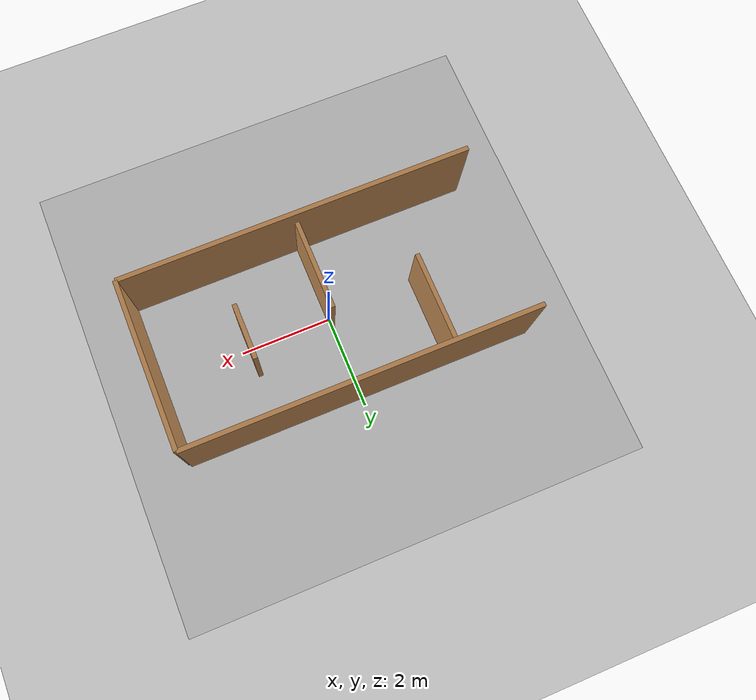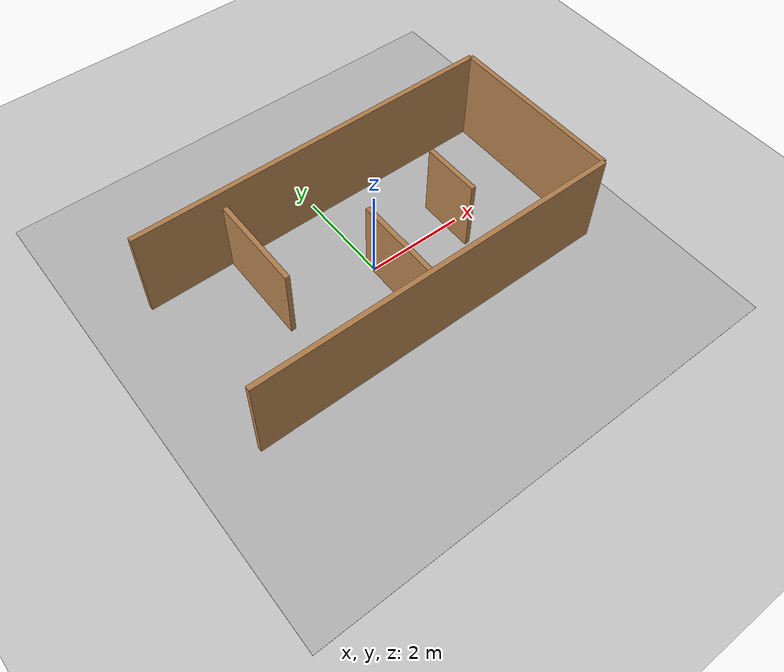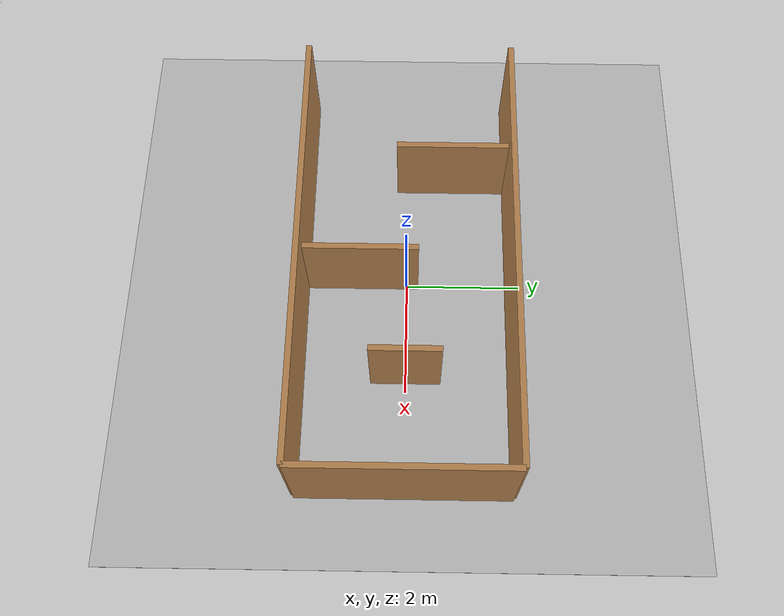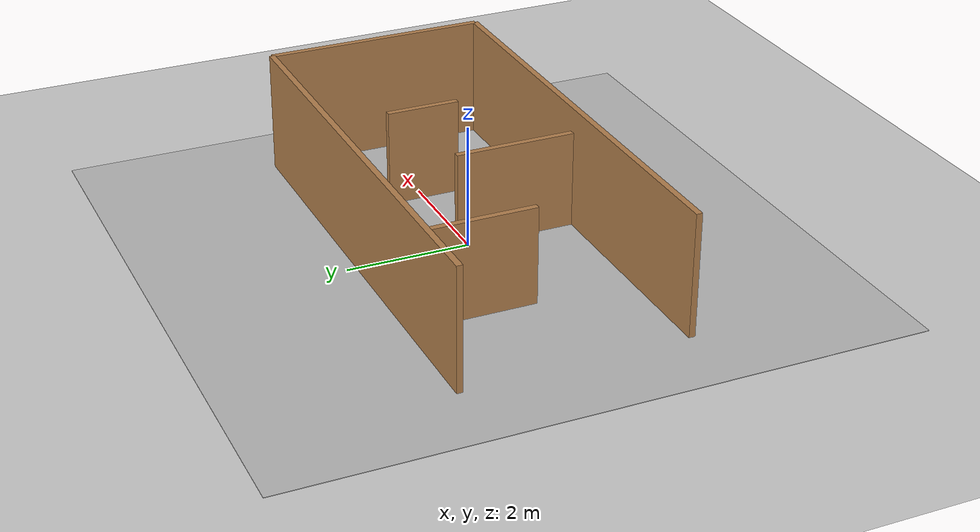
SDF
<?xml version="1.0" ?>
<sdf version="1.5">
  <world name="default">
    <!-- 全向无影子光源 -->
    <light type="directional" name="point_light">
      <pose>0.0 0 15 0 0 0</pose>
      <cast_shadows>false</cast_shadows>
    </light>
    <!-- A ground plane -->
    <include>
      <uri>model://ground_plane</uri>
    </include>

    <!-- 初始视角 -->
    <gui fullscreen='0'>
      <camera name='user_camera'>
        <pose>-7.0 0.0 18.0 0 1.3 0.0</pose>
        <view_controller>orbit</view_controller>
      </camera>
    </gui>

    <!-- 地面 -->
    <model name="logo_ground">
      <pose>0 0 0.01 0 0 1.57</pose>
      <static>true</static>
      <link name="link">
        <visual name="visual">
          <cast_shadows>false</cast_shadows>
          <geometry>
            <box>
              <size>10 10 0.01</size>
            </box>
          </geometry>
          <material>
            <script>
              <uri>model://logo_ground/materials/scripts</uri>
              <uri>model://logo_ground/materials/textures</uri>
              <name>Cube/logo_ground</name>
            </script>
          </material>
        </visual>
      </link>
    </model>

    <physics type='ode'>
      <gravity>0 0 -9.8066</gravity>
      <ode>
        <solver>
          <type>quick</type>
          <iters>150</iters>
          <sor>1.3</sor>
          <use_dynamic_moi_rescaling>0</use_dynamic_moi_rescaling>
        </solver>
        <constraints>
          <cfm>0.00001</cfm>
          <erp>0.2</erp>
          <contact_max_correcting_vel>1000</contact_max_correcting_vel>
          <contact_surface_layer>0.01</contact_surface_layer>
        </constraints>
      </ode>
      <max_step_size>0.004</max_step_size>
      <real_time_factor>1000.0</real_time_factor>
      <real_time_update_rate>250</real_time_update_rate>
      <magnetic_field>6.0e-6 2.3e-5 -4.2e-5</magnetic_field>
    </physics>

    <!-- 前墙 -->
    <model name='wall_front'>
      <static>true</static>
      <link name="wall_front">
          <pose frame=''>3.8 0 1 0 -0 1.57</pose>
          <inertial>
            <mass>2.0</mass>
          </inertial>
          <collision name="collision">
            <geometry>
              <box>
                <size>3.6 0.1 2</size>
              </box>
            </geometry>
          </collision>
          <visual name="visual">
            <geometry>
              <box>
                <size>3.6 0.1 2</size>
              </box>
            </geometry>
            <material>
              <script>
                <uri>file://media/materials/scripts/gazebo.material</uri>
                <name>Gazebo/Wood</name>
              </script>
              <ambient>1 1 1 1</ambient>
            </material>
          </visual>
      </link>
      <link name="wall_right">
          <pose frame=''>-0 1.8 1 0 -0 0</pose>
          <inertial>
            <mass>2.0</mass>
          </inertial>
          <collision name="collision">
            <geometry>
              <box>
                <size>7.6 0.1 2</size>
              </box>
            </geometry>
          </collision>
          <visual name="visual">
            <geometry>
              <box>
                <size>7.6 0.1 2</size>
              </box>
            </geometry>
            <material>
              <script>
                <uri>file://media/materials/scripts/gazebo.material</uri>
                <name>Gazebo/Wood</name>
              </script>
              <ambient>1 1 1 1</ambient>
            </material>
          </visual>
      </link>
      <link name="wall_left">
          <pose frame=''>-0 -1.8 1 0 -0 0</pose>
          <inertial>
            <mass>2.0</mass>
          </inertial>
          <collision name="collision">
            <geometry>
              <box>
                <size>7.6 0.1 2</size>
              </box>
            </geometry>
          </collision>
          <visual name="visual">
            <geometry>
              <box>
                <size>7.6 0.1 2</size>
              </box>
            </geometry>
            <material>
              <script>
                <uri>file://media/materials/scripts/gazebo.material</uri>
                <name>Gazebo/Wood</name>
              </script>
              <ambient>1 1 1 1</ambient>
            </material>
          </visual>
      </link>
    </model>

    <!-- 柱子障碍物 -->
    <model name='obstacle'>
      <static>true</static>

      <link name="wall_1">
          <pose frame=''>-2.0 0.8 0.8 0 -0 1.57</pose>
          <inertial>
            <mass>2.0</mass>
          </inertial>
          <collision name="collision">
            <geometry>
              <box>
                <size>2.0 0.1 1.6</size>
              </box>
            </geometry>
          </collision>
          <visual name="visual">
            <geometry>
              <box>
                <size>2.0 0.1 1.6</size>
              </box>
            </geometry>
            <material>
              <script>
                <uri>file://media/materials/scripts/gazebo.material</uri>
                <name>Gazebo/Wood</name>
              </script>
              <ambient>1 1 1 1</ambient>
            </material>
          </visual>
      </link>

      <link name="wall_2">
          <pose frame=''>-0 -0.8 0.8 0 -0 1.57</pose>
          <inertial>
            <mass>2.0</mass>
          </inertial>
          <collision name="collision">
            <geometry>
              <box>
                <size>2.0 0.1 1.6</size>
              </box>
            </geometry>
          </collision>
          <visual name="visual">
            <geometry>
              <box>
                <size>2.0 0.1 1.6</size>
              </box>
            </geometry>
            <material>
              <script>
                <uri>file://media/materials/scripts/gazebo.material</uri>
                <name>Gazebo/Wood</name>
              </script>
              <ambient>1 1 1 1</ambient>
            </material>
          </visual>
      </link>

      <link name="wall_3">
          <pose frame=''>1.8 -0.0 0.8 0 -0 1.57</pose>
          <inertial>
            <mass>2.0</mass>
          </inertial>
          <collision name="collision">
            <geometry>
              <box>
                <size>1.2 0.1 1.6</size>
              </box>
            </geometry>
          </collision>
          <visual name="visual">
            <geometry>
              <box>
                <size>1.2 0.1 1.6</size>
              </box>
            </geometry>
            <material>
              <script>
                <uri>file://media/materials/scripts/gazebo.material</uri>
                <name>Gazebo/Wood</name>
              </script>
              <ambient>1 1 1 1</ambient>
            </material>
          </visual>
      </link>

    </model>

  </world>
</sdf>
